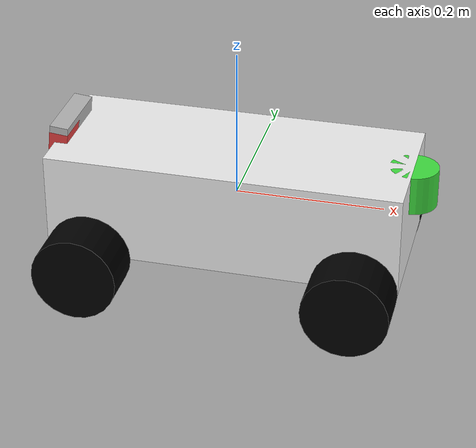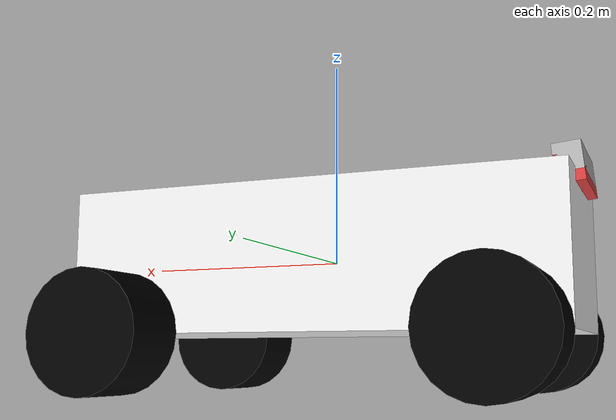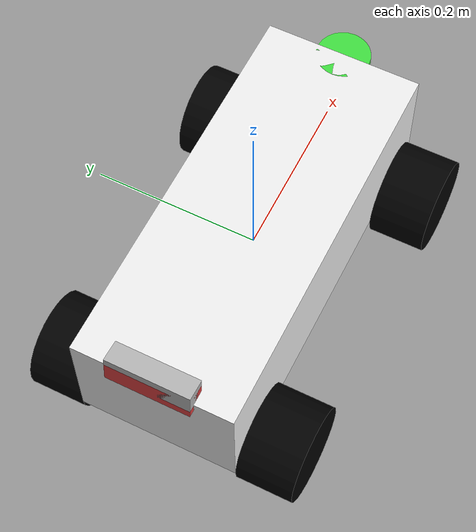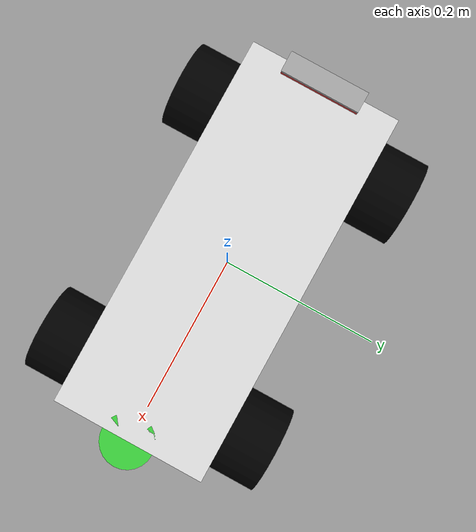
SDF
<sdf version='1.9'>
  <model name='ackermann_steering_vehicle'>
    <link name='base_link'>
      <inertial>
        <pose>-0.232 0 0.06899999999999999 0 0 0</pose>
        <mass>2.0000000000000002e-05</mass>
        <inertia>
          <ixx>1.9999999999999999e-06</ixx>
          <ixy>0</ixy>
          <ixz>5.2939559203393771e-23</ixz>
          <iyy>1.9999999999999991e-06</iyy>
          <iyz>0</iyz>
          <izz>1.9999999999999999e-06</izz>
        </inertia>
      </inertial>
      <collision name='base_link_fixed_joint_lump__body_link_collision'>
        <pose>0 0 0 0 0 0</pose>
        <geometry>
          <box>
            <size>0.474 0.192 0.138</size>
          </box>
        </geometry>
      </collision>
      <collision name='base_link_fixed_joint_lump__camera_stick_link_collision_1'>
        <pose>-0.232 0 0.06900000000000001 0 0 0</pose>
        <geometry>
          <box>
            <size>0.01 0.01 0.0254</size>
          </box>
        </geometry>
      </collision>
      <collision name='base_link_fixed_joint_lump__camera_link_collision_2'>
        <pose>-0.232 0 0.06900000000000001 0 0.1 0</pose>
        <geometry>
          <box>
            <size>0.0254 0.1 0.0254</size>
          </box>
        </geometry>
        <surface>
          <contact>
            <ode/>
          </contact>
          <friction>
            <ode/>
          </friction>
        </surface>
      </collision>
      <collision name='base_link_fixed_joint_lump__imu_link_collision_3'>
        <pose>-0.2310016658335317 0 0.07895004165278026 0 0.1 0</pose>
        <geometry>
          <box>
            <size>0.0254 0.1 0.0254</size>
          </box>
        </geometry>
        <surface>
          <contact>
            <ode/>
          </contact>
          <friction>
            <ode/>
          </friction>
        </surface>
      </collision>
      <collision name='base_link_fixed_joint_lump__lidar_link_collision_4'>
        <pose>0.237 0 0.04260000000000001 0 0 0</pose>
        <geometry>
          <cylinder>
            <length>0.0528</length>
            <radius>0.032500000000000001</radius>
          </cylinder>
        </geometry>
        <surface>
          <contact>
            <ode/>
          </contact>
          <friction>
            <ode/>
          </friction>
        </surface>
      </collision>
      <visual name='base_link_fixed_joint_lump__body_link_visual'>
        <pose>0 0 0 0 0 0</pose>
        <geometry>
          <box>
            <size>0.474 0.192 0.138</size>
          </box>
        </geometry>
        <material>
          <diffuse>0.9375 0.9375 0.9375 1</diffuse>
          <ambient>0.9375 0.9375 0.9375 1</ambient>
        </material>
      </visual>
      <visual name='base_link_fixed_joint_lump__camera_stick_link_visual_1'>
        <pose>-0.232 0 0.06900000000000001 0 0 0</pose>
        <geometry>
          <box>
            <size>0.01 0.01 0.0254</size>
          </box>
        </geometry>
        <material>
          <diffuse>0.3125 0.3125 0.3125 1</diffuse>
          <ambient>0.3125 0.3125 0.3125 1</ambient>
        </material>
      </visual>
      <visual name='base_link_fixed_joint_lump__camera_link_visual_2'>
        <pose>-0.232 0 0.06900000000000001 0 0.1 0</pose>
        <geometry>
          <box>
            <size>0.0254 0.1 0.0254</size>
          </box>
        </geometry>
        <material>
          <diffuse>0.875 0.25 0.25 1</diffuse>
          <ambient>0.875 0.25 0.25 1</ambient>
        </material>
      </visual>
      <visual name='base_link_fixed_joint_lump__imu_link_visual_3'>
        <pose>-0.2310016658335317 0 0.07895004165278026 0 0.1 0</pose>
        <geometry>
          <box>
            <size>0.0254 0.1 0.0254</size>
          </box>
        </geometry>
      </visual>
      <visual name='base_link_fixed_joint_lump__lidar_link_visual_4'>
        <pose>0.237 0 0.04260000000000001 0 0 0</pose>
        <geometry>
          <cylinder>
            <length>0.0528</length>
            <radius>0.032500000000000001</radius>
          </cylinder>
        </geometry>
        <material>
          <diffuse>0.25 0.875 0.25 1</diffuse>
          <ambient>0.25 0.875 0.25 1</ambient>
        </material>
      </visual>
      <sensor name='vehicle_front_camera' type='camera'>
        <update_rate>30</update_rate>
        <visualize>true</visualize>
        <topic>camera</topic>
        <camera name='head'>
          <horizontal_fov>1.5707960000000001</horizontal_fov>
          <image>
            <width>640</width>
            <height>480</height>
            <format>R8G8B8</format>
          </image>
          <clip>
            <near>0.02</near>
            <far>300</far>
          </clip>
          <noise>
            <type>gaussian</type>
            <mean>0</mean>
            <stddev>0.0070000000000000001</stddev>
          </noise>
        </camera>
        <pose>-0.232 0 0.069 0 0.1 0</pose>
      </sensor>
      <sensor name='imu_sensor' type='imu'>
        <always_on>true</always_on>
        <update_rate>100</update_rate>
        <visualize>true</visualize>
        <imu>
          <angular_velocity>
            <x>
              <noise type='gaussian'>
                <mean>0</mean>
                <stddev>0.00020000000000000001</stddev>
                <bias_mean>7.5000000000000002e-06</bias_mean>
                <bias_stddev>7.9999999999999996e-07</bias_stddev>
              </noise>
            </x>
            <y>
              <noise type='gaussian'>
                <mean>0</mean>
                <stddev>0.00020000000000000001</stddev>
                <bias_mean>7.5000000000000002e-06</bias_mean>
                <bias_stddev>7.9999999999999996e-07</bias_stddev>
              </noise>
            </y>
            <z>
              <noise type='gaussian'>
                <mean>0</mean>
                <stddev>0.00020000000000000001</stddev>
                <bias_mean>7.5000000000000002e-06</bias_mean>
                <bias_stddev>7.9999999999999996e-07</bias_stddev>
              </noise>
            </z>
          </angular_velocity>
          <linear_acceleration>
            <x>
              <noise type='gaussian'>
                <mean>0</mean>
                <stddev>0.017000000000000001</stddev>
                <bias_mean>0.10000000000000001</bias_mean>
                <bias_stddev>0.001</bias_stddev>
              </noise>
            </x>
            <y>
              <noise type='gaussian'>
                <mean>0</mean>
                <stddev>0.017000000000000001</stddev>
                <bias_mean>0.10000000000000001</bias_mean>
                <bias_stddev>0.001</bias_stddev>
              </noise>
            </y>
            <z>
              <noise type='gaussian'>
                <mean>0</mean>
                <stddev>0.017000000000000001</stddev>
                <bias_mean>0.10000000000000001</bias_mean>
                <bias_stddev>0.001</bias_stddev>
              </noise>
            </z>
          </linear_acceleration>
        </imu>
        <pose>-0.231002 0 0.07895 0 0.1 0</pose>
      </sensor>
      <sensor name='lidar_sensor' type='gpu_lidar'>
        <update_rate>10</update_rate>
        <topic>LaserScan</topic>
        <always_on>true</always_on>
        <visualize>true</visualize>
        <ray>
          <scan>
            <horizontal>
              <samples>500</samples>
              <resolution>1</resolution>
              <min_angle>-3.1419999999999999</min_angle>
              <max_angle>3.1419999999999999</max_angle>
            </horizontal>
            <vertical>
              <samples>1</samples>
              <resolution>1</resolution>
              <min_angle>0</min_angle>
              <max_angle>0</max_angle>
            </vertical>
          </scan>
          <range>
            <min>0.29999999999999999</min>
            <max>40</max>
            <resolution>0.001</resolution>
          </range>
          <noise>
            <type>gaussian</type>
            <mean>0</mean>
            <stddev>0</stddev>
          </noise>
        </ray>
        <pose>0.237 0 0.0426 0 -0 0</pose>
      </sensor>
    </link>
    <joint name='front_left_steering_joint' type='revolute'>
      <pose relative_to='base_link'>0.1795 0.13 -0.06900000000000001 0 0 0</pose>
      <parent>base_link</parent>
      <child>front_left_steering_link</child>
      <axis>
        <xyz>0 0 1</xyz>
        <limit>
          <lower>-0.61080000000000001</lower>
          <upper>0.61080000000000001</upper>
          <effort>1</effort>
          <velocity>1.5707960000000001</velocity>
        </limit>
        <dynamics>
          <damping>0.10000000000000001</damping>
          <friction>0.10000000000000001</friction>
          <spring_reference>0</spring_reference>
          <spring_stiffness>0</spring_stiffness>
        </dynamics>
      </axis>
    </joint>
    <link name='front_left_steering_link'>
      <pose relative_to='front_left_steering_joint'>0 0 0 0 0 0</pose>
      <inertial>
        <pose>0 0 0 1.570795 0 0</pose>
        <mass>0.01</mass>
        <inertia>
          <ixx>0.001</ixx>
          <ixy>0</ixy>
          <ixz>0</ixz>
          <iyy>0.001</iyy>
          <iyz>0</iyz>
          <izz>0.001</izz>
        </inertia>
      </inertial>
      <collision name='front_left_steering_link_collision'>
        <pose>0 0 0 1.570795 0 0</pose>
        <geometry>
          <cylinder>
            <length>0.001</length>
            <radius>0.01</radius>
          </cylinder>
        </geometry>
      </collision>
      <visual name='front_left_steering_link_visual'>
        <pose>0 0 0 1.570795 0 0</pose>
        <geometry>
          <cylinder>
            <length>0.001</length>
            <radius>0.01</radius>
          </cylinder>
        </geometry>
        <material>
          <diffuse>0 0 0 1</diffuse>
          <ambient>0 0 0 1</ambient>
        </material>
      </visual>
    </link>
    <joint name='front_left_wheel_joint' type='revolute'>
      <pose relative_to='front_left_steering_link'>0 0 0 0 0 0</pose>
      <parent>front_left_steering_link</parent>
      <child>front_left_wheel_link</child>
      <axis>
        <xyz>0 1 0</xyz>
        <limit>
          <effort>10</effort>
          <velocity>17.39130434782609</velocity>
          <lower>-10000000000000000</lower>
          <upper>10000000000000000</upper>
        </limit>
        <dynamics>
          <damping>0.10000000000000001</damping>
          <friction>0.10000000000000001</friction>
          <spring_reference>0</spring_reference>
          <spring_stiffness>0</spring_stiffness>
        </dynamics>
      </axis>
    </joint>
    <link name='front_left_wheel_link'>
      <pose relative_to='front_left_wheel_joint'>0 0 0 0 0 0</pose>
      <inertial>
        <pose>0 0 0 1.570795 0 0</pose>
        <mass>0.70630856753625004</mass>
        <inertia>
          <ixx>0.00085597241004481666</ixx>
          <ixy>0</ixy>
          <ixz>0</ixz>
          <iyy>0.00085597241004481666</iyy>
          <iyz>0</iyz>
          <izz>0.001167616350708363</izz>
        </inertia>
      </inertial>
      <collision name='front_left_wheel_link_collision'>
        <pose>0 0 0 1.570795 0 0</pose>
        <geometry>
          <cylinder>
            <length>0.068000000000000005</length>
            <radius>0.057500000000000002</radius>
          </cylinder>
        </geometry>
        <surface>
          <contact>
            <ode/>
          </contact>
          <friction>
            <ode>
              <mu>100</mu>
              <mu2>100</mu2>
            </ode>
          </friction>
        </surface>
      </collision>
      <visual name='front_left_wheel_link_visual'>
        <pose>0 0 0 1.570795 0 0</pose>
        <geometry>
          <cylinder>
            <length>0.068000000000000005</length>
            <radius>0.057500000000000002</radius>
          </cylinder>
        </geometry>
        <material>
          <diffuse>0 0 0 1</diffuse>
          <ambient>0 0 0 1</ambient>
        </material>
      </visual>
    </link>
    <joint name='front_right_steering_joint' type='revolute'>
      <pose relative_to='base_link'>0.1795 -0.13 -0.06900000000000001 0 0 0</pose>
      <parent>base_link</parent>
      <child>front_right_steering_link</child>
      <axis>
        <xyz>0 0 1</xyz>
        <limit>
          <lower>-0.61080000000000001</lower>
          <upper>0.61080000000000001</upper>
          <effort>1</effort>
          <velocity>1.5707960000000001</velocity>
        </limit>
        <dynamics>
          <damping>0.10000000000000001</damping>
          <friction>0.10000000000000001</friction>
          <spring_reference>0</spring_reference>
          <spring_stiffness>0</spring_stiffness>
        </dynamics>
      </axis>
    </joint>
    <link name='front_right_steering_link'>
      <pose relative_to='front_right_steering_joint'>0 0 0 0 0 0</pose>
      <inertial>
        <pose>0 0 0 1.570795 0 0</pose>
        <mass>0.01</mass>
        <inertia>
          <ixx>0.001</ixx>
          <ixy>0</ixy>
          <ixz>0</ixz>
          <iyy>0.001</iyy>
          <iyz>0</iyz>
          <izz>0.001</izz>
        </inertia>
      </inertial>
      <collision name='front_right_steering_link_collision'>
        <pose>0 0 0 1.570795 0 0</pose>
        <geometry>
          <cylinder>
            <length>0.001</length>
            <radius>0.01</radius>
          </cylinder>
        </geometry>
      </collision>
      <visual name='front_right_steering_link_visual'>
        <pose>0 0 0 1.570795 0 0</pose>
        <geometry>
          <cylinder>
            <length>0.001</length>
            <radius>0.01</radius>
          </cylinder>
        </geometry>
        <material>
          <diffuse>0 0 0 1</diffuse>
          <ambient>0 0 0 1</ambient>
        </material>
      </visual>
    </link>
    <joint name='front_right_wheel_joint' type='revolute'>
      <pose relative_to='front_right_steering_link'>0 0 0 0 0 0</pose>
      <parent>front_right_steering_link</parent>
      <child>front_right_wheel_link</child>
      <axis>
        <xyz>0 1 0</xyz>
        <limit>
          <effort>10</effort>
          <velocity>17.39130434782609</velocity>
          <lower>-10000000000000000</lower>
          <upper>10000000000000000</upper>
        </limit>
        <dynamics>
          <damping>0.10000000000000001</damping>
          <friction>0.10000000000000001</friction>
          <spring_reference>0</spring_reference>
          <spring_stiffness>0</spring_stiffness>
        </dynamics>
      </axis>
    </joint>
    <link name='front_right_wheel_link'>
      <pose relative_to='front_right_wheel_joint'>0 0 0 0 0 0</pose>
      <inertial>
        <pose>0 0 0 1.570795 0 0</pose>
        <mass>0.70630856753625004</mass>
        <inertia>
          <ixx>0.00085597241004481666</ixx>
          <ixy>0</ixy>
          <ixz>0</ixz>
          <iyy>0.00085597241004481666</iyy>
          <iyz>0</iyz>
          <izz>0.001167616350708363</izz>
        </inertia>
      </inertial>
      <collision name='front_right_wheel_link_collision'>
        <pose>0 0 0 1.570795 0 0</pose>
        <geometry>
          <cylinder>
            <length>0.068000000000000005</length>
            <radius>0.057500000000000002</radius>
          </cylinder>
        </geometry>
        <surface>
          <contact>
            <ode/>
          </contact>
          <friction>
            <ode>
              <mu>100</mu>
              <mu2>100</mu2>
            </ode>
          </friction>
        </surface>
      </collision>
      <visual name='front_right_wheel_link_visual'>
        <pose>0 0 0 1.570795 0 0</pose>
        <geometry>
          <cylinder>
            <length>0.068000000000000005</length>
            <radius>0.057500000000000002</radius>
          </cylinder>
        </geometry>
        <material>
          <diffuse>0 0 0 1</diffuse>
          <ambient>0 0 0 1</ambient>
        </material>
      </visual>
    </link>
    <joint name='rear_left_wheel_joint' type='revolute'>
      <pose relative_to='base_link'>-0.1795 0.13 -0.06900000000000001 0 0 0</pose>
      <parent>base_link</parent>
      <child>rear_left_wheel_link</child>
      <axis>
        <xyz>0 1 0</xyz>
        <limit>
          <effort>10</effort>
          <velocity>17.39130434782609</velocity>
          <lower>-10000000000000000</lower>
          <upper>10000000000000000</upper>
        </limit>
        <dynamics>
          <damping>0.10000000000000001</damping>
          <friction>0.10000000000000001</friction>
          <spring_reference>0</spring_reference>
          <spring_stiffness>0</spring_stiffness>
        </dynamics>
      </axis>
    </joint>
    <link name='rear_left_wheel_link'>
      <pose relative_to='rear_left_wheel_joint'>0 0 0 0 0 0</pose>
      <inertial>
        <pose>0 0 0 1.570795 0 0</pose>
        <mass>2</mass>
        <inertia>
          <ixx>0.00085597241004481666</ixx>
          <ixy>0</ixy>
          <ixz>0</ixz>
          <iyy>0.00085597241004481666</iyy>
          <iyz>0</iyz>
          <izz>0.001167616350708363</izz>
        </inertia>
      </inertial>
      <collision name='rear_left_wheel_link_collision'>
        <pose>0 0 0 1.570795 0 0</pose>
        <geometry>
          <cylinder>
            <length>0.068000000000000005</length>
            <radius>0.057500000000000002</radius>
          </cylinder>
        </geometry>
        <surface>
          <contact>
            <ode/>
          </contact>
          <friction>
            <ode>
              <mu>100</mu>
              <mu2>100</mu2>
            </ode>
          </friction>
        </surface>
      </collision>
      <visual name='rear_left_wheel_link_visual'>
        <pose>0 0 0 1.570795 0 0</pose>
        <geometry>
          <cylinder>
            <length>0.068000000000000005</length>
            <radius>0.057500000000000002</radius>
          </cylinder>
        </geometry>
        <material>
          <diffuse>0 0 0 1</diffuse>
          <ambient>0 0 0 1</ambient>
        </material>
      </visual>
    </link>
    <joint name='rear_right_wheel_joint' type='revolute'>
      <pose relative_to='base_link'>-0.1795 -0.13 -0.06900000000000001 0 0 0</pose>
      <parent>base_link</parent>
      <child>rear_right_wheel_link</child>
      <axis>
        <xyz>0 1 0</xyz>
        <limit>
          <effort>10</effort>
          <velocity>17.39130434782609</velocity>
          <lower>-10000000000000000</lower>
          <upper>10000000000000000</upper>
        </limit>
        <dynamics>
          <damping>0.10000000000000001</damping>
          <friction>0.10000000000000001</friction>
          <spring_reference>0</spring_reference>
          <spring_stiffness>0</spring_stiffness>
        </dynamics>
      </axis>
    </joint>
    <link name='rear_right_wheel_link'>
      <pose relative_to='rear_right_wheel_joint'>0 0 0 0 0 0</pose>
      <inertial>
        <pose>0 0 0 1.570795 0 0</pose>
        <mass>2</mass>
        <inertia>
          <ixx>0.00085597241004481666</ixx>
          <ixy>0</ixy>
          <ixz>0</ixz>
          <iyy>0.00085597241004481666</iyy>
          <iyz>0</iyz>
          <izz>0.001167616350708363</izz>
        </inertia>
      </inertial>
      <collision name='rear_right_wheel_link_collision'>
        <pose>0 0 0 1.570795 0 0</pose>
        <geometry>
          <cylinder>
            <length>0.068000000000000005</length>
            <radius>0.057500000000000002</radius>
          </cylinder>
        </geometry>
        <surface>
          <contact>
            <ode/>
          </contact>
          <friction>
            <ode>
              <mu>100</mu>
              <mu2>100</mu2>
            </ode>
          </friction>
        </surface>
      </collision>
      <visual name='rear_right_wheel_link_visual'>
        <pose>0 0 0 1.570795 0 0</pose>
        <geometry>
          <cylinder>
            <length>0.068000000000000005</length>
            <radius>0.057500000000000002</radius>
          </cylinder>
        </geometry>
        <material>
          <diffuse>0 0 0 1</diffuse>
          <ambient>0 0 0 1</ambient>
        </material>
      </visual>
    </link>
    <joint name='steering_wheel_joint' type='revolute'>
      <pose relative_to='base_link'>0 0 0 0 0 0</pose>
      <parent>base_link</parent>
      <child>steering_wheel_link</child>
      <axis>
        <xyz>1 0 0</xyz>
        <limit>
          <lower>-10000000000000000</lower>
          <upper>10000000000000000</upper>
        </limit>
        <dynamics>
          <spring_reference>0</spring_reference>
          <spring_stiffness>0</spring_stiffness>
        </dynamics>
      </axis>
    </joint>
    <link name='steering_wheel_link'>
      <pose relative_to='steering_wheel_joint'>0 0 0 0 0 0</pose>
      <inertial>
        <pose>0 0 0 0 0 0</pose>
        <mass>1.0000000000000001e-05</mass>
        <inertia>
          <ixx>9.9999999999999995e-07</ixx>
          <ixy>0</ixy>
          <ixz>0</ixz>
          <iyy>9.9999999999999995e-07</iyy>
          <iyz>0</iyz>
          <izz>9.9999999999999995e-07</izz>
        </inertia>
      </inertial>
    </link>
    <plugin name='ignition::gazebo::systems::AckermannSteering' filename='libignition-gazebo-ackermann-steering-system'>
      <left_joint>front_left_wheel_joint</left_joint>
      <left_joint>rear_left_wheel_joint</left_joint>
      <right_joint>front_right_wheel_joint</right_joint>
      <right_joint>rear_right_wheel_joint</right_joint>
      <left_steering_joint>front_left_steering_joint</left_steering_joint>
      <right_steering_joint>front_right_steering_joint</right_steering_joint>
      <kingpin_width>1.0</kingpin_width>
      <steering_limit>0.5</steering_limit>
      <wheel_base>1.0</wheel_base>
      <wheel_separation>1.25</wheel_separation>
      <wheel_radius>0.3</wheel_radius>
      <min_velocity>-1</min_velocity>
      <max_velocity>1</max_velocity>
      <min_acceleration>-3</min_acceleration>
      <max_acceleration>3</max_acceleration>
      <topic>cmd_vel</topic>
    </plugin>
    <plugin name='ignition::gazebo::systems::JointStatePublisher' filename='libignition-gazebo-joint-state-publisher-system.so'>
      <topic>joint_states</topic>
      <update_rate>100</update_rate>
    </plugin>
    <plugin name='gz_ros2_control::GazeboSimROS2ControlPlugin' filename='gz_ros2_control-system'>
      <parameters>/workspaces/Cybertron/robot_challenge_description/install/robot_challenge_description/share/robot_challenge_description/config/gz_ros2_control.yaml</parameters>
    </plugin>
    <frame name='body_joint' attached_to='base_link'>
      <pose>0 0 0 0 -0 0</pose>
    </frame>
    <frame name='body_link' attached_to='body_joint'/>
    <frame name='imu_joint' attached_to='camera_link'>
      <pose>0 0 0.01 0 -0 0</pose>
    </frame>
    <frame name='imu_link' attached_to='imu_joint'/>
    <frame name='camera_joint' attached_to='camera_stick_link'>
      <pose>0 0 0 0 0.1 0</pose>
    </frame>
    <frame name='camera_link' attached_to='camera_joint'/>
    <frame name='camera_stick_joint' attached_to='base_link'>
      <pose>-0.232 0 0.069 0 -0 0</pose>
    </frame>
    <frame name='camera_stick_link' attached_to='camera_stick_joint'/>
    <frame name='lidar_joint' attached_to='base_link'>
      <pose>0.237 0 0.0426 0 -0 0</pose>
    </frame>
    <frame name='lidar_link' attached_to='lidar_joint'/>
  </model>
</sdf>
